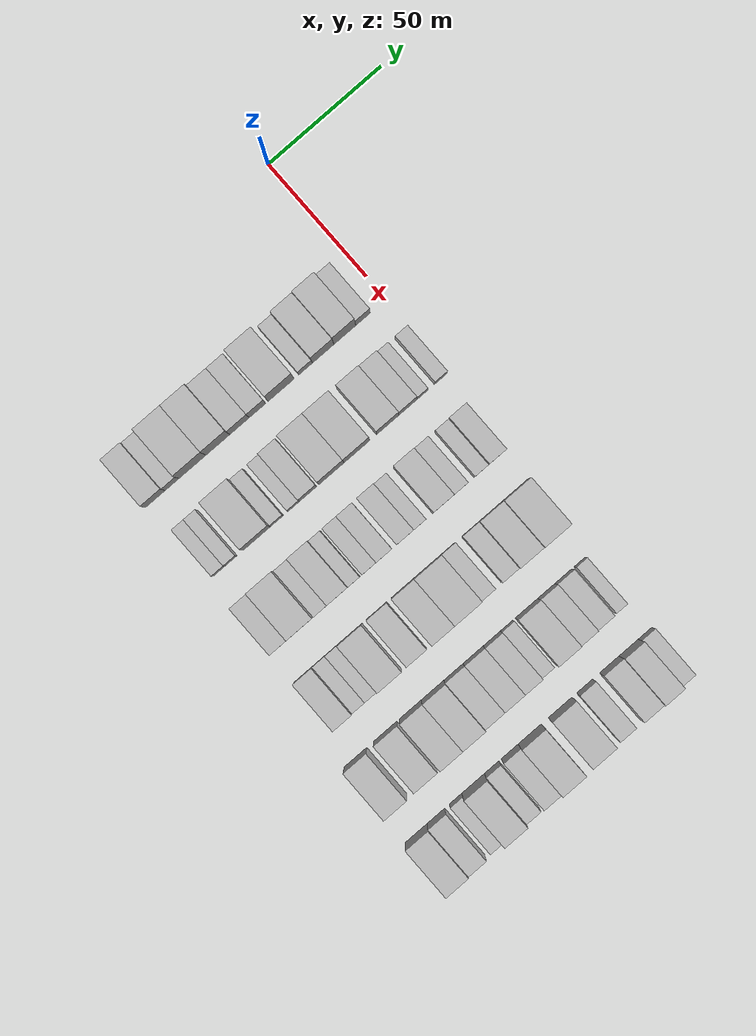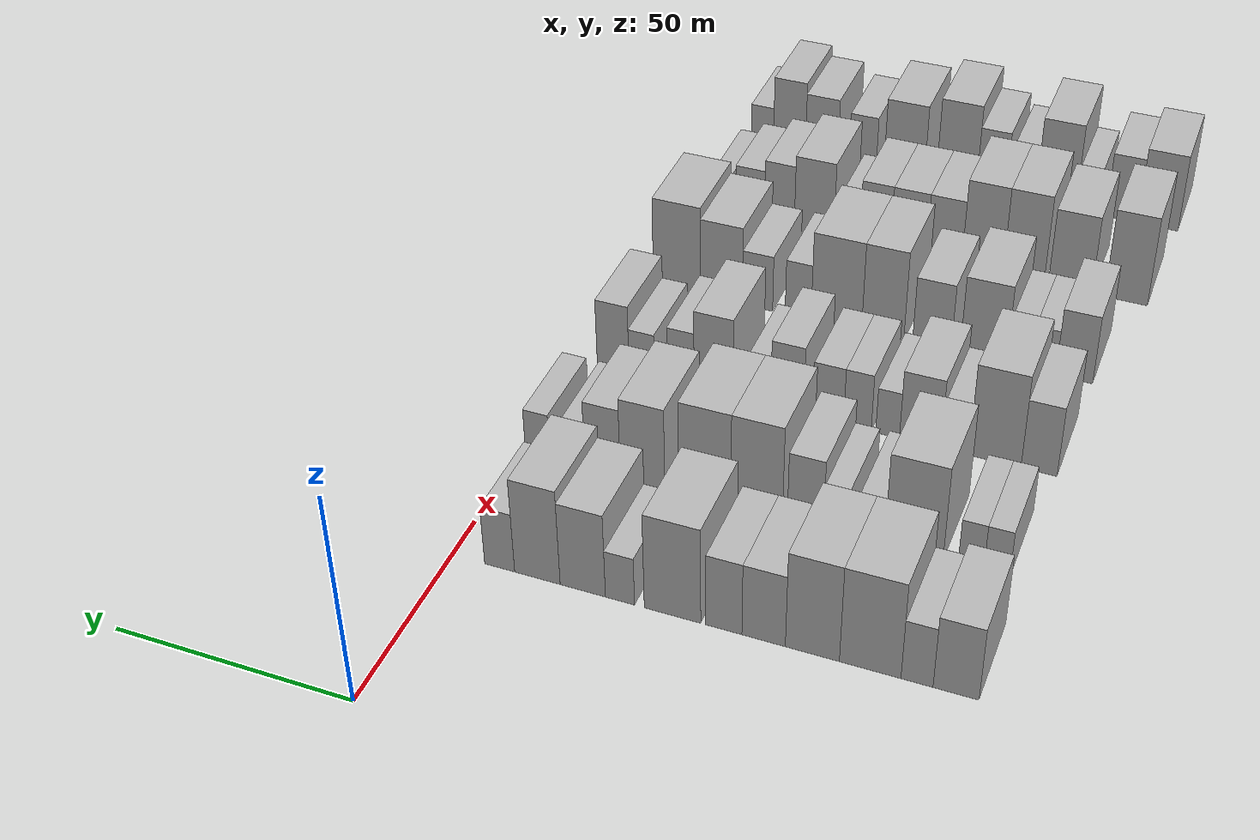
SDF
<sdf version="1.6">
 <world name="default">
  <model name="building_46">
   <static>1</static>
   <pose>50.0000 -101.3251 0 0.000000 0.000000 0.000000</pose>
   <link name="link">
    <pose>0 0 9.00 0 0 0</pose>
    <collision name="collision"><geometry><box><size>20.0000 8.5796 18.0000</size></box></geometry></collision>
    <visual name="visual">
     <cast_shadows>0</cast_shadows>
     <geometry><box><size>20.0000 8.5796 18.0000</size></box></geometry>
     <material>
      <script>
       <uri>model://HANNAS_wall/materials/scripts</uri>
       <uri>model://HANNAS_wall/materials/textures</uri>
       <name>vrc/HANNAS_wall</name>
      </script>
     </material>
    </visual>
   </link>
  </model>
  <model name="building_47">
   <static>1</static>
   <pose>50.0000 -94.0103 0 0.000000 0.000000 0.000000</pose>
   <link name="link">
    <pose>0 0 7.50 0 0 0</pose>
    <collision name="collision"><geometry><box><size>20.0000 6.0500 15.0000</size></box></geometry></collision>
    <visual name="visual">
     <cast_shadows>0</cast_shadows>
     <geometry><box><size>20.0000 6.0500 15.0000</size></box></geometry>
     <material>
      <script>
       <uri>model://HANNAS_wall/materials/scripts</uri>
       <uri>model://HANNAS_wall/materials/textures</uri>
       <name>vrc/HANNAS_wall</name>
      </script>
     </material>
    </visual>
   </link>
  </model>
  <model name="building_48">
   <static>1</static>
   <pose>50.0000 -85.0996 0 0.000000 0.000000 0.000000</pose>
   <link name="link">
    <pose>0 0 12.00 0 0 0</pose>
    <collision name="collision"><geometry><box><size>20.0000 11.7714 24.0000</size></box></geometry></collision>
    <visual name="visual">
     <cast_shadows>0</cast_shadows>
     <geometry><box><size>20.0000 11.7714 24.0000</size></box></geometry>
     <material>
      <script>
       <uri>model://HANNAS_wall/materials/scripts</uri>
       <uri>model://HANNAS_wall/materials/textures</uri>
       <name>vrc/HANNAS_wall</name>
      </script>
     </material>
    </visual>
   </link>
  </model>
  <model name="building_49">
   <static>1</static>
   <pose>50.0000 -73.9607 0 0.000000 0.000000 0.000000</pose>
   <link name="link">
    <pose>0 0 12.00 0 0 0</pose>
    <collision name="collision"><geometry><box><size>20.0000 10.5065 24.0000</size></box></geometry></collision>
    <visual name="visual">
     <cast_shadows>0</cast_shadows>
     <geometry><box><size>20.0000 10.5065 24.0000</size></box></geometry>
     <material>
      <script>
       <uri>model://HANNAS_wall/materials/scripts</uri>
       <uri>model://HANNAS_wall/materials/textures</uri>
       <name>vrc/HANNAS_wall</name>
      </script>
     </material>
    </visual>
   </link>
  </model>
  <model name="building_50">
   <static>1</static>
   <pose>50.0000 -64.4210 0 0.000000 0.000000 0.000000</pose>
   <link name="link">
    <pose>0 0 9.00 0 0 0</pose>
    <collision name="collision"><geometry><box><size>20.0000 8.5731 18.0000</size></box></geometry></collision>
    <visual name="visual">
     <cast_shadows>0</cast_shadows>
     <geometry><box><size>20.0000 8.5731 18.0000</size></box></geometry>
     <material>
      <script>
       <uri>model://HANNAS_wall/materials/scripts</uri>
       <uri>model://HANNAS_wall/materials/textures</uri>
       <name>vrc/HANNAS_wall</name>
      </script>
     </material>
    </visual>
   </link>
  </model>
  <model name="building_51">
   <static>1</static>
   <pose>50.0000 -56.5271 0 0.000000 0.000000 0.000000</pose>
   <link name="link">
    <pose>0 0 9.00 0 0 0</pose>
    <collision name="collision"><geometry><box><size>20.0000 7.2146 18.0000</size></box></geometry></collision>
    <visual name="visual">
     <cast_shadows>0</cast_shadows>
     <geometry><box><size>20.0000 7.2146 18.0000</size></box></geometry>
     <material>
      <script>
       <uri>model://HANNAS_wall/materials/scripts</uri>
       <uri>model://HANNAS_wall/materials/textures</uri>
       <name>vrc/HANNAS_wall</name>
      </script>
     </material>
    </visual>
   </link>
  </model>
  <model name="building_52">
   <static>1</static>
   <pose>50.0000 -46.1975 0 0.000000 0.000000 0.000000</pose>
   <link name="link">
    <pose>0 0 12.00 0 0 0</pose>
    <collision name="collision"><geometry><box><size>20.0000 11.4446 24.0000</size></box></geometry></collision>
    <visual name="visual">
     <cast_shadows>0</cast_shadows>
     <geometry><box><size>20.0000 11.4446 24.0000</size></box></geometry>
     <material>
      <script>
       <uri>model://HANNAS_wall/materials/scripts</uri>
       <uri>model://HANNAS_wall/materials/textures</uri>
       <name>vrc/HANNAS_wall</name>
      </script>
     </material>
    </visual>
   </link>
  </model>
  <model name="building_53">
   <static>1</static>
   <pose>50.0000 -35.4818 0 0.000000 0.000000 0.000000</pose>
   <link name="link">
    <pose>0 0 6.00 0 0 0</pose>
    <collision name="collision"><geometry><box><size>20.0000 5.9866 12.0000</size></box></geometry></collision>
    <visual name="visual">
     <cast_shadows>0</cast_shadows>
     <geometry><box><size>20.0000 5.9866 12.0000</size></box></geometry>
     <material>
      <script>
       <uri>model://HANNAS_wall/materials/scripts</uri>
       <uri>model://HANNAS_wall/materials/textures</uri>
       <name>vrc/HANNAS_wall</name>
      </script>
     </material>
    </visual>
   </link>
  </model>
  <model name="building_54">
   <static>1</static>
   <pose>50.0000 -27.7684 0 0.000000 0.000000 0.000000</pose>
   <link name="link">
    <pose>0 0 10.50 0 0 0</pose>
    <collision name="collision"><geometry><box><size>20.0000 9.4403 21.0000</size></box></geometry></collision>
    <visual name="visual">
     <cast_shadows>0</cast_shadows>
     <geometry><box><size>20.0000 9.4403 21.0000</size></box></geometry>
     <material>
      <script>
       <uri>model://HANNAS_wall/materials/scripts</uri>
       <uri>model://HANNAS_wall/materials/textures</uri>
       <name>vrc/HANNAS_wall</name>
      </script>
     </material>
    </visual>
   </link>
  </model>
  <model name="building_55">
   <static>1</static>
   <pose>50.0000 -18.2410 0 0.000000 0.000000 0.000000</pose>
   <link name="link">
    <pose>0 0 12.00 0 0 0</pose>
    <collision name="collision"><geometry><box><size>20.0000 9.6144 24.0000</size></box></geometry></collision>
    <visual name="visual">
     <cast_shadows>0</cast_shadows>
     <geometry><box><size>20.0000 9.6144 24.0000</size></box></geometry>
     <material>
      <script>
       <uri>model://HANNAS_wall/materials/scripts</uri>
       <uri>model://HANNAS_wall/materials/textures</uri>
       <name>vrc/HANNAS_wall</name>
      </script>
     </material>
    </visual>
   </link>
  </model>
  <model name="building_56">
   <static>1</static>
   <pose>50.0000 -10.2349 0 0.000000 0.000000 0.000000</pose>
   <link name="link">
    <pose>0 0 7.50 0 0 0</pose>
    <collision name="collision"><geometry><box><size>20.0000 6.3978 15.0000</size></box></geometry></collision>
    <visual name="visual">
     <cast_shadows>0</cast_shadows>
     <geometry><box><size>20.0000 6.3978 15.0000</size></box></geometry>
     <material>
      <script>
       <uri>model://HANNAS_wall/materials/scripts</uri>
       <uri>model://HANNAS_wall/materials/textures</uri>
       <name>vrc/HANNAS_wall</name>
      </script>
     </material>
    </visual>
   </link>
  </model>
  <model name="building_161">
   <static>1</static>
   <pose>82.0000 -100.8582 0 0.000000 0.000000 0.000000</pose>
   <link name="link">
    <pose>0 0 6.00 0 0 0</pose>
    <collision name="collision"><geometry><box><size>20.0000 5.1512 12.0000</size></box></geometry></collision>
    <visual name="visual">
     <cast_shadows>0</cast_shadows>
     <geometry><box><size>20.0000 5.1512 12.0000</size></box></geometry>
     <material>
      <script>
       <uri>model://HANNAS_wall/materials/scripts</uri>
       <uri>model://HANNAS_wall/materials/textures</uri>
       <name>vrc/HANNAS_wall</name>
      </script>
     </material>
    </visual>
   </link>
  </model>
  <model name="building_162">
   <static>1</static>
   <pose>82.0000 -95.7278 0 0.000000 0.000000 0.000000</pose>
   <link name="link">
    <pose>0 0 6.00 0 0 0</pose>
    <collision name="collision"><geometry><box><size>20.0000 5.1096 12.0000</size></box></geometry></collision>
    <visual name="visual">
     <cast_shadows>0</cast_shadows>
     <geometry><box><size>20.0000 5.1096 12.0000</size></box></geometry>
     <material>
      <script>
       <uri>model://HANNAS_wall/materials/scripts</uri>
       <uri>model://HANNAS_wall/materials/textures</uri>
       <name>vrc/HANNAS_wall</name>
      </script>
     </material>
    </visual>
   </link>
  </model>
  <model name="building_163">
   <static>1</static>
   <pose>82.0000 -84.2497 0 0.000000 0.000000 0.000000</pose>
   <link name="link">
    <pose>0 0 12.00 0 0 0</pose>
    <collision name="collision"><geometry><box><size>20.0000 11.8466 24.0000</size></box></geometry></collision>
    <visual name="visual">
     <cast_shadows>0</cast_shadows>
     <geometry><box><size>20.0000 11.8466 24.0000</size></box></geometry>
     <material>
      <script>
       <uri>model://HANNAS_wall/materials/scripts</uri>
       <uri>model://HANNAS_wall/materials/textures</uri>
       <name>vrc/HANNAS_wall</name>
      </script>
     </material>
    </visual>
   </link>
  </model>
  <model name="building_164">
   <static>1</static>
   <pose>82.0000 -75.5701 0 0.000000 0.000000 0.000000</pose>
   <link name="link">
    <pose>0 0 6.00 0 0 0</pose>
    <collision name="collision"><geometry><box><size>20.0000 5.5127 12.0000</size></box></geometry></collision>
    <visual name="visual">
     <cast_shadows>0</cast_shadows>
     <geometry><box><size>20.0000 5.5127 12.0000</size></box></geometry>
     <material>
      <script>
       <uri>model://HANNAS_wall/materials/scripts</uri>
       <uri>model://HANNAS_wall/materials/textures</uri>
       <name>vrc/HANNAS_wall</name>
      </script>
     </material>
    </visual>
   </link>
  </model>
  <model name="building_165">
   <static>1</static>
   <pose>82.0000 -68.2630 0 0.000000 0.000000 0.000000</pose>
   <link name="link">
    <pose>0 0 6.00 0 0 0</pose>
    <collision name="collision"><geometry><box><size>20.0000 5.1013 12.0000</size></box></geometry></collision>
    <visual name="visual">
     <cast_shadows>0</cast_shadows>
     <geometry><box><size>20.0000 5.1013 12.0000</size></box></geometry>
     <material>
      <script>
       <uri>model://HANNAS_wall/materials/scripts</uri>
       <uri>model://HANNAS_wall/materials/textures</uri>
       <name>vrc/HANNAS_wall</name>
      </script>
     </material>
    </visual>
   </link>
  </model>
  <model name="building_166">
   <static>1</static>
   <pose>82.0000 -61.9470 0 0.000000 0.000000 0.000000</pose>
   <link name="link">
    <pose>0 0 9.00 0 0 0</pose>
    <collision name="collision"><geometry><box><size>20.0000 7.5308 18.0000</size></box></geometry></collision>
    <visual name="visual">
     <cast_shadows>0</cast_shadows>
     <geometry><box><size>20.0000 7.5308 18.0000</size></box></geometry>
     <material>
      <script>
       <uri>model://HANNAS_wall/materials/scripts</uri>
       <uri>model://HANNAS_wall/materials/textures</uri>
       <name>vrc/HANNAS_wall</name>
      </script>
     </material>
    </visual>
   </link>
  </model>
  <model name="building_167">
   <static>1</static>
   <pose>82.0000 -51.7028 0 0.000000 0.000000 0.000000</pose>
   <link name="link">
    <pose>0 0 12.00 0 0 0</pose>
    <collision name="collision"><geometry><box><size>20.0000 10.9577 24.0000</size></box></geometry></collision>
    <visual name="visual">
     <cast_shadows>0</cast_shadows>
     <geometry><box><size>20.0000 10.9577 24.0000</size></box></geometry>
     <material>
      <script>
       <uri>model://HANNAS_wall/materials/scripts</uri>
       <uri>model://HANNAS_wall/materials/textures</uri>
       <name>vrc/HANNAS_wall</name>
      </script>
     </material>
    </visual>
   </link>
  </model>
  <model name="building_168">
   <static>1</static>
   <pose>82.0000 -40.6099 0 0.000000 0.000000 0.000000</pose>
   <link name="link">
    <pose>0 0 12.00 0 0 0</pose>
    <collision name="collision"><geometry><box><size>20.0000 11.2281 24.0000</size></box></geometry></collision>
    <visual name="visual">
     <cast_shadows>0</cast_shadows>
     <geometry><box><size>20.0000 11.2281 24.0000</size></box></geometry>
     <material>
      <script>
       <uri>model://HANNAS_wall/materials/scripts</uri>
       <uri>model://HANNAS_wall/materials/textures</uri>
       <name>vrc/HANNAS_wall</name>
      </script>
     </material>
    </visual>
   </link>
  </model>
  <model name="building_169">
   <static>1</static>
   <pose>82.0000 -27.1204 0 0.000000 0.000000 0.000000</pose>
   <link name="link">
    <pose>0 0 10.50 0 0 0</pose>
    <collision name="collision"><geometry><box><size>20.0000 9.7509 21.0000</size></box></geometry></collision>
    <visual name="visual">
     <cast_shadows>0</cast_shadows>
     <geometry><box><size>20.0000 9.7509 21.0000</size></box></geometry>
     <material>
      <script>
       <uri>model://HANNAS_wall/materials/scripts</uri>
       <uri>model://HANNAS_wall/materials/textures</uri>
       <name>vrc/HANNAS_wall</name>
      </script>
     </material>
    </visual>
   </link>
  </model>
  <model name="building_170">
   <static>1</static>
   <pose>82.0000 -18.3209 0 0.000000 0.000000 0.000000</pose>
   <link name="link">
    <pose>0 0 9.00 0 0 0</pose>
    <collision name="collision"><geometry><box><size>20.0000 7.8481 18.0000</size></box></geometry></collision>
    <visual name="visual">
     <cast_shadows>0</cast_shadows>
     <geometry><box><size>20.0000 7.8481 18.0000</size></box></geometry>
     <material>
      <script>
       <uri>model://HANNAS_wall/materials/scripts</uri>
       <uri>model://HANNAS_wall/materials/textures</uri>
       <name>vrc/HANNAS_wall</name>
      </script>
     </material>
    </visual>
   </link>
  </model>
  <model name="building_171">
   <static>1</static>
   <pose>82.0000 -11.9458 0 0.000000 0.000000 0.000000</pose>
   <link name="link">
    <pose>0 0 6.00 0 0 0</pose>
    <collision name="collision"><geometry><box><size>20.0000 4.9021 12.0000</size></box></geometry></collision>
    <visual name="visual">
     <cast_shadows>0</cast_shadows>
     <geometry><box><size>20.0000 4.9021 12.0000</size></box></geometry>
     <material>
      <script>
       <uri>model://HANNAS_wall/materials/scripts</uri>
       <uri>model://HANNAS_wall/materials/textures</uri>
       <name>vrc/HANNAS_wall</name>
      </script>
     </material>
    </visual>
   </link>
  </model>
  <model name="building_172">
   <static>1</static>
   <pose>82.0000 -3.7504 0 0.000000 0.000000 0.000000</pose>
   <link name="link">
    <pose>0 0 6.00 0 0 0</pose>
    <collision name="collision"><geometry><box><size>20.0000 5.4887 12.0000</size></box></geometry></collision>
    <visual name="visual">
     <cast_shadows>0</cast_shadows>
     <geometry><box><size>20.0000 5.4887 12.0000</size></box></geometry>
     <material>
      <script>
       <uri>model://HANNAS_wall/materials/scripts</uri>
       <uri>model://HANNAS_wall/materials/textures</uri>
       <name>vrc/HANNAS_wall</name>
      </script>
     </material>
    </visual>
   </link>
  </model>
  <model name="building_277">
   <static>1</static>
   <pose>114.0000 -101.7651 0 0.000000 0.000000 0.000000</pose>
   <link name="link">
    <pose>0 0 9.00 0 0 0</pose>
    <collision name="collision"><geometry><box><size>20.0000 7.5375 18.0000</size></box></geometry></collision>
    <visual name="visual">
     <cast_shadows>0</cast_shadows>
     <geometry><box><size>20.0000 7.5375 18.0000</size></box></geometry>
     <material>
      <script>
       <uri>model://HANNAS_wall/materials/scripts</uri>
       <uri>model://HANNAS_wall/materials/textures</uri>
       <name>vrc/HANNAS_wall</name>
      </script>
     </material>
    </visual>
   </link>
  </model>
  <model name="building_278">
   <static>1</static>
   <pose>114.0000 -92.4987 0 0.000000 0.000000 0.000000</pose>
   <link name="link">
    <pose>0 0 12.00 0 0 0</pose>
    <collision name="collision"><geometry><box><size>20.0000 10.9953 24.0000</size></box></geometry></collision>
    <visual name="visual">
     <cast_shadows>0</cast_shadows>
     <geometry><box><size>20.0000 10.9953 24.0000</size></box></geometry>
     <material>
      <script>
       <uri>model://HANNAS_wall/materials/scripts</uri>
       <uri>model://HANNAS_wall/materials/textures</uri>
       <name>vrc/HANNAS_wall</name>
      </script>
     </material>
    </visual>
   </link>
  </model>
  <model name="building_279">
   <static>1</static>
   <pose>114.0000 -84.0028 0 0.000000 0.000000 0.000000</pose>
   <link name="link">
    <pose>0 0 6.00 0 0 0</pose>
    <collision name="collision"><geometry><box><size>20.0000 5.9964 12.0000</size></box></geometry></collision>
    <visual name="visual">
     <cast_shadows>0</cast_shadows>
     <geometry><box><size>20.0000 5.9964 12.0000</size></box></geometry>
     <material>
      <script>
       <uri>model://HANNAS_wall/materials/scripts</uri>
       <uri>model://HANNAS_wall/materials/textures</uri>
       <name>vrc/HANNAS_wall</name>
      </script>
     </material>
    </visual>
   </link>
  </model>
  <model name="building_280">
   <static>1</static>
   <pose>114.0000 -76.5380 0 0.000000 0.000000 0.000000</pose>
   <link name="link">
    <pose>0 0 9.00 0 0 0</pose>
    <collision name="collision"><geometry><box><size>20.0000 8.9331 18.0000</size></box></geometry></collision>
    <visual name="visual">
     <cast_shadows>0</cast_shadows>
     <geometry><box><size>20.0000 8.9331 18.0000</size></box></geometry>
     <material>
      <script>
       <uri>model://HANNAS_wall/materials/scripts</uri>
       <uri>model://HANNAS_wall/materials/textures</uri>
       <name>vrc/HANNAS_wall</name>
      </script>
     </material>
    </visual>
   </link>
  </model>
  <model name="building_281">
   <static>1</static>
   <pose>114.0000 -69.4905 0 0.000000 0.000000 0.000000</pose>
   <link name="link">
    <pose>0 0 6.00 0 0 0</pose>
    <collision name="collision"><geometry><box><size>20.0000 5.1619 12.0000</size></box></geometry></collision>
    <visual name="visual">
     <cast_shadows>0</cast_shadows>
     <geometry><box><size>20.0000 5.1619 12.0000</size></box></geometry>
     <material>
      <script>
       <uri>model://HANNAS_wall/materials/scripts</uri>
       <uri>model://HANNAS_wall/materials/textures</uri>
       <name>vrc/HANNAS_wall</name>
      </script>
     </material>
    </visual>
   </link>
  </model>
  <model name="building_282">
   <static>1</static>
   <pose>114.0000 -62.8704 0 0.000000 0.000000 0.000000</pose>
   <link name="link">
    <pose>0 0 7.50 0 0 0</pose>
    <collision name="collision"><geometry><box><size>20.0000 6.0783 15.0000</size></box></geometry></collision>
    <visual name="visual">
     <cast_shadows>0</cast_shadows>
     <geometry><box><size>20.0000 6.0783 15.0000</size></box></geometry>
     <material>
      <script>
       <uri>model://HANNAS_wall/materials/scripts</uri>
       <uri>model://HANNAS_wall/materials/textures</uri>
       <name>vrc/HANNAS_wall</name>
      </script>
     </material>
    </visual>
   </link>
  </model>
  <model name="building_283">
   <static>1</static>
   <pose>114.0000 -56.3799 0 0.000000 0.000000 0.000000</pose>
   <link name="link">
    <pose>0 0 7.50 0 0 0</pose>
    <collision name="collision"><geometry><box><size>20.0000 6.9027 15.0000</size></box></geometry></collision>
    <visual name="visual">
     <cast_shadows>0</cast_shadows>
     <geometry><box><size>20.0000 6.9027 15.0000</size></box></geometry>
     <material>
      <script>
       <uri>model://HANNAS_wall/materials/scripts</uri>
       <uri>model://HANNAS_wall/materials/textures</uri>
       <name>vrc/HANNAS_wall</name>
      </script>
     </material>
    </visual>
   </link>
  </model>
  <model name="building_284">
   <static>1</static>
   <pose>114.0000 -47.2412 0 0.000000 0.000000 0.000000</pose>
   <link name="link">
    <pose>0 0 9.00 0 0 0</pose>
    <collision name="collision"><geometry><box><size>20.0000 7.3745 18.0000</size></box></geometry></collision>
    <visual name="visual">
     <cast_shadows>0</cast_shadows>
     <geometry><box><size>20.0000 7.3745 18.0000</size></box></geometry>
     <material>
      <script>
       <uri>model://HANNAS_wall/materials/scripts</uri>
       <uri>model://HANNAS_wall/materials/textures</uri>
       <name>vrc/HANNAS_wall</name>
      </script>
     </material>
    </visual>
   </link>
  </model>
  <model name="building_285">
   <static>1</static>
   <pose>114.0000 -40.8204 0 0.000000 0.000000 0.000000</pose>
   <link name="link">
    <pose>0 0 6.00 0 0 0</pose>
    <collision name="collision"><geometry><box><size>20.0000 5.4673 12.0000</size></box></geometry></collision>
    <visual name="visual">
     <cast_shadows>0</cast_shadows>
     <geometry><box><size>20.0000 5.4673 12.0000</size></box></geometry>
     <material>
      <script>
       <uri>model://HANNAS_wall/materials/scripts</uri>
       <uri>model://HANNAS_wall/materials/textures</uri>
       <name>vrc/HANNAS_wall</name>
      </script>
     </material>
    </visual>
   </link>
  </model>
  <model name="building_286">
   <static>1</static>
   <pose>114.0000 -30.5991 0 0.000000 0.000000 0.000000</pose>
   <link name="link">
    <pose>0 0 10.50 0 0 0</pose>
    <collision name="collision"><geometry><box><size>20.0000 8.9754 21.0000</size></box></geometry></collision>
    <visual name="visual">
     <cast_shadows>0</cast_shadows>
     <geometry><box><size>20.0000 8.9754 21.0000</size></box></geometry>
     <material>
      <script>
       <uri>model://HANNAS_wall/materials/scripts</uri>
       <uri>model://HANNAS_wall/materials/textures</uri>
       <name>vrc/HANNAS_wall</name>
      </script>
     </material>
    </visual>
   </link>
  </model>
  <model name="building_287">
   <static>1</static>
   <pose>114.0000 -23.0089 0 0.000000 0.000000 0.000000</pose>
   <link name="link">
    <pose>0 0 7.50 0 0 0</pose>
    <collision name="collision"><geometry><box><size>20.0000 6.2050 15.0000</size></box></geometry></collision>
    <visual name="visual">
     <cast_shadows>0</cast_shadows>
     <geometry><box><size>20.0000 6.2050 15.0000</size></box></geometry>
     <material>
      <script>
       <uri>model://HANNAS_wall/materials/scripts</uri>
       <uri>model://HANNAS_wall/materials/textures</uri>
       <name>vrc/HANNAS_wall</name>
      </script>
     </material>
    </visual>
   </link>
  </model>
  <model name="building_288">
   <static>1</static>
   <pose>114.0000 -13.9368 0 0.000000 0.000000 0.000000</pose>
   <link name="link">
    <pose>0 0 6.00 0 0 0</pose>
    <collision name="collision"><geometry><box><size>20.0000 5.9391 12.0000</size></box></geometry></collision>
    <visual name="visual">
     <cast_shadows>0</cast_shadows>
     <geometry><box><size>20.0000 5.9391 12.0000</size></box></geometry>
     <material>
      <script>
       <uri>model://HANNAS_wall/materials/scripts</uri>
       <uri>model://HANNAS_wall/materials/textures</uri>
       <name>vrc/HANNAS_wall</name>
      </script>
     </material>
    </visual>
   </link>
  </model>
  <model name="building_289">
   <static>1</static>
   <pose>114.0000 -7.2246 0 0.000000 0.000000 0.000000</pose>
   <link name="link">
    <pose>0 0 9.00 0 0 0</pose>
    <collision name="collision"><geometry><box><size>20.0000 7.4855 18.0000</size></box></geometry></collision>
    <visual name="visual">
     <cast_shadows>0</cast_shadows>
     <geometry><box><size>20.0000 7.4855 18.0000</size></box></geometry>
     <material>
      <script>
       <uri>model://HANNAS_wall/materials/scripts</uri>
       <uri>model://HANNAS_wall/materials/textures</uri>
       <name>vrc/HANNAS_wall</name>
      </script>
     </material>
    </visual>
   </link>
  </model>
  <model name="building_394">
   <static>1</static>
   <pose>146.0000 -102.0742 0 0.000000 0.000000 0.000000</pose>
   <link name="link">
    <pose>0 0 9.00 0 0 0</pose>
    <collision name="collision"><geometry><box><size>20.0000 8.1431 18.0000</size></box></geometry></collision>
    <visual name="visual">
     <cast_shadows>0</cast_shadows>
     <geometry><box><size>20.0000 8.1431 18.0000</size></box></geometry>
     <material>
      <script>
       <uri>model://HANNAS_wall/materials/scripts</uri>
       <uri>model://HANNAS_wall/materials/textures</uri>
       <name>vrc/HANNAS_wall</name>
      </script>
     </material>
    </visual>
   </link>
  </model>
  <model name="building_395">
   <static>1</static>
   <pose>146.0000 -95.2711 0 0.000000 0.000000 0.000000</pose>
   <link name="link">
    <pose>0 0 6.00 0 0 0</pose>
    <collision name="collision"><geometry><box><size>20.0000 5.4632 12.0000</size></box></geometry></collision>
    <visual name="visual">
     <cast_shadows>0</cast_shadows>
     <geometry><box><size>20.0000 5.4632 12.0000</size></box></geometry>
     <material>
      <script>
       <uri>model://HANNAS_wall/materials/scripts</uri>
       <uri>model://HANNAS_wall/materials/textures</uri>
       <name>vrc/HANNAS_wall</name>
      </script>
     </material>
    </visual>
   </link>
  </model>
  <model name="building_396">
   <static>1</static>
   <pose>146.0000 -89.8103 0 0.000000 0.000000 0.000000</pose>
   <link name="link">
    <pose>0 0 6.00 0 0 0</pose>
    <collision name="collision"><geometry><box><size>20.0000 5.4584 12.0000</size></box></geometry></collision>
    <visual name="visual">
     <cast_shadows>0</cast_shadows>
     <geometry><box><size>20.0000 5.4584 12.0000</size></box></geometry>
     <material>
      <script>
       <uri>model://HANNAS_wall/materials/scripts</uri>
       <uri>model://HANNAS_wall/materials/textures</uri>
       <name>vrc/HANNAS_wall</name>
      </script>
     </material>
    </visual>
   </link>
  </model>
  <model name="building_397">
   <static>1</static>
   <pose>146.0000 -81.8323 0 0.000000 0.000000 0.000000</pose>
   <link name="link">
    <pose>0 0 10.50 0 0 0</pose>
    <collision name="collision"><geometry><box><size>20.0000 10.4977 21.0000</size></box></geometry></collision>
    <visual name="visual">
     <cast_shadows>0</cast_shadows>
     <geometry><box><size>20.0000 10.4977 21.0000</size></box></geometry>
     <material>
      <script>
       <uri>model://HANNAS_wall/materials/scripts</uri>
       <uri>model://HANNAS_wall/materials/textures</uri>
       <name>vrc/HANNAS_wall</name>
      </script>
     </material>
    </visual>
   </link>
  </model>
  <model name="building_398">
   <static>1</static>
   <pose>146.0000 -70.1763 0 0.000000 0.000000 0.000000</pose>
   <link name="link">
    <pose>0 0 9.00 0 0 0</pose>
    <collision name="collision"><geometry><box><size>20.0000 8.8142 18.0000</size></box></geometry></collision>
    <visual name="visual">
     <cast_shadows>0</cast_shadows>
     <geometry><box><size>20.0000 8.8142 18.0000</size></box></geometry>
     <material>
      <script>
       <uri>model://HANNAS_wall/materials/scripts</uri>
       <uri>model://HANNAS_wall/materials/textures</uri>
       <name>vrc/HANNAS_wall</name>
      </script>
     </material>
    </visual>
   </link>
  </model>
  <model name="building_399">
   <static>1</static>
   <pose>146.0000 -58.8663 0 0.000000 0.000000 0.000000</pose>
   <link name="link">
    <pose>0 0 12.00 0 0 0</pose>
    <collision name="collision"><geometry><box><size>20.0000 9.8058 24.0000</size></box></geometry></collision>
    <visual name="visual">
     <cast_shadows>0</cast_shadows>
     <geometry><box><size>20.0000 9.8058 24.0000</size></box></geometry>
     <material>
      <script>
       <uri>model://HANNAS_wall/materials/scripts</uri>
       <uri>model://HANNAS_wall/materials/textures</uri>
       <name>vrc/HANNAS_wall</name>
      </script>
     </material>
    </visual>
   </link>
  </model>
  <model name="building_400">
   <static>1</static>
   <pose>146.0000 -48.0170 0 0.000000 0.000000 0.000000</pose>
   <link name="link">
    <pose>0 0 12.00 0 0 0</pose>
    <collision name="collision"><geometry><box><size>20.0000 11.8928 24.0000</size></box></geometry></collision>
    <visual name="visual">
     <cast_shadows>0</cast_shadows>
     <geometry><box><size>20.0000 11.8928 24.0000</size></box></geometry>
     <material>
      <script>
       <uri>model://HANNAS_wall/materials/scripts</uri>
       <uri>model://HANNAS_wall/materials/textures</uri>
       <name>vrc/HANNAS_wall</name>
      </script>
     </material>
    </visual>
   </link>
  </model>
  <model name="building_401">
   <static>1</static>
   <pose>146.0000 -38.9970 0 0.000000 0.000000 0.000000</pose>
   <link name="link">
    <pose>0 0 7.50 0 0 0</pose>
    <collision name="collision"><geometry><box><size>20.0000 6.1473 15.0000</size></box></geometry></collision>
    <visual name="visual">
     <cast_shadows>0</cast_shadows>
     <geometry><box><size>20.0000 6.1473 15.0000</size></box></geometry>
     <material>
      <script>
       <uri>model://HANNAS_wall/materials/scripts</uri>
       <uri>model://HANNAS_wall/materials/textures</uri>
       <name>vrc/HANNAS_wall</name>
      </script>
     </material>
    </visual>
   </link>
  </model>
  <model name="building_402">
   <static>1</static>
   <pose>146.0000 -29.2977 0 0.000000 0.000000 0.000000</pose>
   <link name="link">
    <pose>0 0 7.50 0 0 0</pose>
    <collision name="collision"><geometry><box><size>20.0000 7.2513 15.0000</size></box></geometry></collision>
    <visual name="visual">
     <cast_shadows>0</cast_shadows>
     <geometry><box><size>20.0000 7.2513 15.0000</size></box></geometry>
     <material>
      <script>
       <uri>model://HANNAS_wall/materials/scripts</uri>
       <uri>model://HANNAS_wall/materials/textures</uri>
       <name>vrc/HANNAS_wall</name>
      </script>
     </material>
    </visual>
   </link>
  </model>
  <model name="building_403">
   <static>1</static>
   <pose>146.0000 -20.5526 0 0.000000 0.000000 0.000000</pose>
   <link name="link">
    <pose>0 0 10.50 0 0 0</pose>
    <collision name="collision"><geometry><box><size>20.0000 10.2390 21.0000</size></box></geometry></collision>
    <visual name="visual">
     <cast_shadows>0</cast_shadows>
     <geometry><box><size>20.0000 10.2390 21.0000</size></box></geometry>
     <material>
      <script>
       <uri>model://HANNAS_wall/materials/scripts</uri>
       <uri>model://HANNAS_wall/materials/textures</uri>
       <name>vrc/HANNAS_wall</name>
      </script>
     </material>
    </visual>
   </link>
  </model>
  <model name="building_404">
   <static>1</static>
   <pose>146.0000 -9.6573 0 0.000000 0.000000 0.000000</pose>
   <link name="link">
    <pose>0 0 12.00 0 0 0</pose>
    <collision name="collision"><geometry><box><size>20.0000 11.5516 24.0000</size></box></geometry></collision>
    <visual name="visual">
     <cast_shadows>0</cast_shadows>
     <geometry><box><size>20.0000 11.5516 24.0000</size></box></geometry>
     <material>
      <script>
       <uri>model://HANNAS_wall/materials/scripts</uri>
       <uri>model://HANNAS_wall/materials/textures</uri>
       <name>vrc/HANNAS_wall</name>
      </script>
     </material>
    </visual>
   </link>
  </model>
  <model name="building_515">
   <static>1</static>
   <pose>178.0000 -107.1009 0 0.000000 0.000000 0.000000</pose>
   <link name="link">
    <pose>0 0 12.00 0 0 0</pose>
    <collision name="collision"><geometry><box><size>20.0000 9.8146 24.0000</size></box></geometry></collision>
    <visual name="visual">
     <cast_shadows>0</cast_shadows>
     <geometry><box><size>20.0000 9.8146 24.0000</size></box></geometry>
     <material>
      <script>
       <uri>model://HANNAS_wall/materials/scripts</uri>
       <uri>model://HANNAS_wall/materials/textures</uri>
       <name>vrc/HANNAS_wall</name>
      </script>
     </material>
    </visual>
   </link>
  </model>
  <model name="building_516">
   <static>1</static>
   <pose>178.0000 -94.1415 0 0.000000 0.000000 0.000000</pose>
   <link name="link">
    <pose>0 0 10.50 0 0 0</pose>
    <collision name="collision"><geometry><box><size>20.0000 10.1042 21.0000</size></box></geometry></collision>
    <visual name="visual">
     <cast_shadows>0</cast_shadows>
     <geometry><box><size>20.0000 10.1042 21.0000</size></box></geometry>
     <material>
      <script>
       <uri>model://HANNAS_wall/materials/scripts</uri>
       <uri>model://HANNAS_wall/materials/textures</uri>
       <name>vrc/HANNAS_wall</name>
      </script>
     </material>
    </visual>
   </link>
  </model>
  <model name="building_517">
   <static>1</static>
   <pose>178.0000 -83.2145 0 0.000000 0.000000 0.000000</pose>
   <link name="link">
    <pose>0 0 12.00 0 0 0</pose>
    <collision name="collision"><geometry><box><size>20.0000 9.7497 24.0000</size></box></geometry></collision>
    <visual name="visual">
     <cast_shadows>0</cast_shadows>
     <geometry><box><size>20.0000 9.7497 24.0000</size></box></geometry>
     <material>
      <script>
       <uri>model://HANNAS_wall/materials/scripts</uri>
       <uri>model://HANNAS_wall/materials/textures</uri>
       <name>vrc/HANNAS_wall</name>
      </script>
     </material>
    </visual>
   </link>
  </model>
  <model name="building_518">
   <static>1</static>
   <pose>178.0000 -73.4131 0 0.000000 0.000000 0.000000</pose>
   <link name="link">
    <pose>0 0 12.00 0 0 0</pose>
    <collision name="collision"><geometry><box><size>20.0000 9.8532 24.0000</size></box></geometry></collision>
    <visual name="visual">
     <cast_shadows>0</cast_shadows>
     <geometry><box><size>20.0000 9.8532 24.0000</size></box></geometry>
     <material>
      <script>
       <uri>model://HANNAS_wall/materials/scripts</uri>
       <uri>model://HANNAS_wall/materials/textures</uri>
       <name>vrc/HANNAS_wall</name>
      </script>
     </material>
    </visual>
   </link>
  </model>
  <model name="building_519">
   <static>1</static>
   <pose>178.0000 -64.2420 0 0.000000 0.000000 0.000000</pose>
   <link name="link">
    <pose>0 0 9.00 0 0 0</pose>
    <collision name="collision"><geometry><box><size>20.0000 8.4890 18.0000</size></box></geometry></collision>
    <visual name="visual">
     <cast_shadows>0</cast_shadows>
     <geometry><box><size>20.0000 8.4890 18.0000</size></box></geometry>
     <material>
      <script>
       <uri>model://HANNAS_wall/materials/scripts</uri>
       <uri>model://HANNAS_wall/materials/textures</uri>
       <name>vrc/HANNAS_wall</name>
      </script>
     </material>
    </visual>
   </link>
  </model>
  <model name="building_520">
   <static>1</static>
   <pose>178.0000 -55.6225 0 0.000000 0.000000 0.000000</pose>
   <link name="link">
    <pose>0 0 9.00 0 0 0</pose>
    <collision name="collision"><geometry><box><size>20.0000 8.7499 18.0000</size></box></geometry></collision>
    <visual name="visual">
     <cast_shadows>0</cast_shadows>
     <geometry><box><size>20.0000 8.7499 18.0000</size></box></geometry>
     <material>
      <script>
       <uri>model://HANNAS_wall/materials/scripts</uri>
       <uri>model://HANNAS_wall/materials/textures</uri>
       <name>vrc/HANNAS_wall</name>
      </script>
     </material>
    </visual>
   </link>
  </model>
  <model name="building_521">
   <static>1</static>
   <pose>178.0000 -47.4298 0 0.000000 0.000000 0.000000</pose>
   <link name="link">
    <pose>0 0 9.00 0 0 0</pose>
    <collision name="collision"><geometry><box><size>20.0000 7.6354 18.0000</size></box></geometry></collision>
    <visual name="visual">
     <cast_shadows>0</cast_shadows>
     <geometry><box><size>20.0000 7.6354 18.0000</size></box></geometry>
     <material>
      <script>
       <uri>model://HANNAS_wall/materials/scripts</uri>
       <uri>model://HANNAS_wall/materials/textures</uri>
       <name>vrc/HANNAS_wall</name>
      </script>
     </material>
    </visual>
   </link>
  </model>
  <model name="building_522">
   <static>1</static>
   <pose>178.0000 -40.9003 0 0.000000 0.000000 0.000000</pose>
   <link name="link">
    <pose>0 0 6.00 0 0 0</pose>
    <collision name="collision"><geometry><box><size>20.0000 5.4236 12.0000</size></box></geometry></collision>
    <visual name="visual">
     <cast_shadows>0</cast_shadows>
     <geometry><box><size>20.0000 5.4236 12.0000</size></box></geometry>
     <material>
      <script>
       <uri>model://HANNAS_wall/materials/scripts</uri>
       <uri>model://HANNAS_wall/materials/textures</uri>
       <name>vrc/HANNAS_wall</name>
      </script>
     </material>
    </visual>
   </link>
  </model>
  <model name="building_523">
   <static>1</static>
   <pose>178.0000 -32.2348 0 0.000000 0.000000 0.000000</pose>
   <link name="link">
    <pose>0 0 10.50 0 0 0</pose>
    <collision name="collision"><geometry><box><size>20.0000 9.9074 21.0000</size></box></geometry></collision>
    <visual name="visual">
     <cast_shadows>0</cast_shadows>
     <geometry><box><size>20.0000 9.9074 21.0000</size></box></geometry>
     <material>
      <script>
       <uri>model://HANNAS_wall/materials/scripts</uri>
       <uri>model://HANNAS_wall/materials/textures</uri>
       <name>vrc/HANNAS_wall</name>
      </script>
     </material>
    </visual>
   </link>
  </model>
  <model name="building_524">
   <static>1</static>
   <pose>178.0000 -23.5097 0 0.000000 0.000000 0.000000</pose>
   <link name="link">
    <pose>0 0 9.00 0 0 0</pose>
    <collision name="collision"><geometry><box><size>20.0000 7.5427 18.0000</size></box></geometry></collision>
    <visual name="visual">
     <cast_shadows>0</cast_shadows>
     <geometry><box><size>20.0000 7.5427 18.0000</size></box></geometry>
     <material>
      <script>
       <uri>model://HANNAS_wall/materials/scripts</uri>
       <uri>model://HANNAS_wall/materials/textures</uri>
       <name>vrc/HANNAS_wall</name>
      </script>
     </material>
    </visual>
   </link>
  </model>
  <model name="building_525">
   <static>1</static>
   <pose>178.0000 -16.0559 0 0.000000 0.000000 0.000000</pose>
   <link name="link">
    <pose>0 0 7.50 0 0 0</pose>
    <collision name="collision"><geometry><box><size>20.0000 7.3649 15.0000</size></box></geometry></collision>
    <visual name="visual">
     <cast_shadows>0</cast_shadows>
     <geometry><box><size>20.0000 7.3649 15.0000</size></box></geometry>
     <material>
      <script>
       <uri>model://HANNAS_wall/materials/scripts</uri>
       <uri>model://HANNAS_wall/materials/textures</uri>
       <name>vrc/HANNAS_wall</name>
      </script>
     </material>
    </visual>
   </link>
  </model>
  <model name="building_526">
   <static>1</static>
   <pose>178.0000 -8.9499 0 0.000000 0.000000 0.000000</pose>
   <link name="link">
    <pose>0 0 6.00 0 0 0</pose>
    <collision name="collision"><geometry><box><size>20.0000 4.8472 12.0000</size></box></geometry></collision>
    <visual name="visual">
     <cast_shadows>0</cast_shadows>
     <geometry><box><size>20.0000 4.8472 12.0000</size></box></geometry>
     <material>
      <script>
       <uri>model://HANNAS_wall/materials/scripts</uri>
       <uri>model://HANNAS_wall/materials/textures</uri>
       <name>vrc/HANNAS_wall</name>
      </script>
     </material>
    </visual>
   </link>
  </model>
  <model name="building_636">
   <static>1</static>
   <pose>210.0000 -108.4646 0 0.000000 0.000000 0.000000</pose>
   <link name="link">
    <pose>0 0 10.50 0 0 0</pose>
    <collision name="collision"><geometry><box><size>20.0000 9.7087 21.0000</size></box></geometry></collision>
    <visual name="visual">
     <cast_shadows>0</cast_shadows>
     <geometry><box><size>20.0000 9.7087 21.0000</size></box></geometry>
     <material>
      <script>
       <uri>model://HANNAS_wall/materials/scripts</uri>
       <uri>model://HANNAS_wall/materials/textures</uri>
       <name>vrc/HANNAS_wall</name>
      </script>
     </material>
    </visual>
   </link>
  </model>
  <model name="building_637">
   <static>1</static>
   <pose>210.0000 -99.7363 0 0.000000 0.000000 0.000000</pose>
   <link name="link">
    <pose>0 0 9.00 0 0 0</pose>
    <collision name="collision"><geometry><box><size>20.0000 7.7478 18.0000</size></box></geometry></collision>
    <visual name="visual">
     <cast_shadows>0</cast_shadows>
     <geometry><box><size>20.0000 7.7478 18.0000</size></box></geometry>
     <material>
      <script>
       <uri>model://HANNAS_wall/materials/scripts</uri>
       <uri>model://HANNAS_wall/materials/textures</uri>
       <name>vrc/HANNAS_wall</name>
      </script>
     </material>
    </visual>
   </link>
  </model>
  <model name="building_638">
   <static>1</static>
   <pose>210.0000 -91.1451 0 0.000000 0.000000 0.000000</pose>
   <link name="link">
    <pose>0 0 6.00 0 0 0</pose>
    <collision name="collision"><geometry><box><size>20.0000 5.4347 12.0000</size></box></geometry></collision>
    <visual name="visual">
     <cast_shadows>0</cast_shadows>
     <geometry><box><size>20.0000 5.4347 12.0000</size></box></geometry>
     <material>
      <script>
       <uri>model://HANNAS_wall/materials/scripts</uri>
       <uri>model://HANNAS_wall/materials/textures</uri>
       <name>vrc/HANNAS_wall</name>
      </script>
     </material>
    </visual>
   </link>
  </model>
  <model name="building_639">
   <static>1</static>
   <pose>210.0000 -83.4638 0 0.000000 0.000000 0.000000</pose>
   <link name="link">
    <pose>0 0 12.00 0 0 0</pose>
    <collision name="collision"><geometry><box><size>20.0000 9.9277 24.0000</size></box></geometry></collision>
    <visual name="visual">
     <cast_shadows>0</cast_shadows>
     <geometry><box><size>20.0000 9.9277 24.0000</size></box></geometry>
     <material>
      <script>
       <uri>model://HANNAS_wall/materials/scripts</uri>
       <uri>model://HANNAS_wall/materials/textures</uri>
       <name>vrc/HANNAS_wall</name>
      </script>
     </material>
    </visual>
   </link>
  </model>
  <model name="building_640">
   <static>1</static>
   <pose>210.0000 -75.3325 0 0.000000 0.000000 0.000000</pose>
   <link name="link">
    <pose>0 0 7.50 0 0 0</pose>
    <collision name="collision"><geometry><box><size>20.0000 6.3349 15.0000</size></box></geometry></collision>
    <visual name="visual">
     <cast_shadows>0</cast_shadows>
     <geometry><box><size>20.0000 6.3349 15.0000</size></box></geometry>
     <material>
      <script>
       <uri>model://HANNAS_wall/materials/scripts</uri>
       <uri>model://HANNAS_wall/materials/textures</uri>
       <name>vrc/HANNAS_wall</name>
      </script>
     </material>
    </visual>
   </link>
  </model>
  <model name="building_641">
   <static>1</static>
   <pose>210.0000 -67.4430 0 0.000000 0.000000 0.000000</pose>
   <link name="link">
    <pose>0 0 9.00 0 0 0</pose>
    <collision name="collision"><geometry><box><size>20.0000 7.4441 18.0000</size></box></geometry></collision>
    <visual name="visual">
     <cast_shadows>0</cast_shadows>
     <geometry><box><size>20.0000 7.4441 18.0000</size></box></geometry>
     <material>
      <script>
       <uri>model://HANNAS_wall/materials/scripts</uri>
       <uri>model://HANNAS_wall/materials/textures</uri>
       <name>vrc/HANNAS_wall</name>
      </script>
     </material>
    </visual>
   </link>
  </model>
  <model name="building_642">
   <static>1</static>
   <pose>210.0000 -58.6213 0 0.000000 0.000000 0.000000</pose>
   <link name="link">
    <pose>0 0 12.00 0 0 0</pose>
    <collision name="collision"><geometry><box><size>20.0000 10.1994 24.0000</size></box></geometry></collision>
    <visual name="visual">
     <cast_shadows>0</cast_shadows>
     <geometry><box><size>20.0000 10.1994 24.0000</size></box></geometry>
     <material>
      <script>
       <uri>model://HANNAS_wall/materials/scripts</uri>
       <uri>model://HANNAS_wall/materials/textures</uri>
       <name>vrc/HANNAS_wall</name>
      </script>
     </material>
    </visual>
   </link>
  </model>
  <model name="building_643">
   <static>1</static>
   <pose>210.0000 -45.2990 0 0.000000 0.000000 0.000000</pose>
   <link name="link">
    <pose>0 0 10.50 0 0 0</pose>
    <collision name="collision"><geometry><box><size>20.0000 10.4453 21.0000</size></box></geometry></collision>
    <visual name="visual">
     <cast_shadows>0</cast_shadows>
     <geometry><box><size>20.0000 10.4453 21.0000</size></box></geometry>
     <material>
      <script>
       <uri>model://HANNAS_wall/materials/scripts</uri>
       <uri>model://HANNAS_wall/materials/textures</uri>
       <name>vrc/HANNAS_wall</name>
      </script>
     </material>
    </visual>
   </link>
  </model>
  <model name="building_644">
   <static>1</static>
   <pose>210.0000 -34.5454 0 0.000000 0.000000 0.000000</pose>
   <link name="link">
    <pose>0 0 7.50 0 0 0</pose>
    <collision name="collision"><geometry><box><size>20.0000 7.0618 15.0000</size></box></geometry></collision>
    <visual name="visual">
     <cast_shadows>0</cast_shadows>
     <geometry><box><size>20.0000 7.0618 15.0000</size></box></geometry>
     <material>
      <script>
       <uri>model://HANNAS_wall/materials/scripts</uri>
       <uri>model://HANNAS_wall/materials/textures</uri>
       <name>vrc/HANNAS_wall</name>
      </script>
     </material>
    </visual>
   </link>
  </model>
  <model name="building_645">
   <static>1</static>
   <pose>210.0000 -23.7283 0 0.000000 0.000000 0.000000</pose>
   <link name="link">
    <pose>0 0 9.00 0 0 0</pose>
    <collision name="collision"><geometry><box><size>20.0000 8.5723 18.0000</size></box></geometry></collision>
    <visual name="visual">
     <cast_shadows>0</cast_shadows>
     <geometry><box><size>20.0000 8.5723 18.0000</size></box></geometry>
     <material>
      <script>
       <uri>model://HANNAS_wall/materials/scripts</uri>
       <uri>model://HANNAS_wall/materials/textures</uri>
       <name>vrc/HANNAS_wall</name>
      </script>
     </material>
    </visual>
   </link>
  </model>
  <model name="building_646">
   <static>1</static>
   <pose>210.0000 -15.1933 0 0.000000 0.000000 0.000000</pose>
   <link name="link">
    <pose>0 0 10.50 0 0 0</pose>
    <collision name="collision"><geometry><box><size>20.0000 8.4978 21.0000</size></box></geometry></collision>
    <visual name="visual">
     <cast_shadows>0</cast_shadows>
     <geometry><box><size>20.0000 8.4978 21.0000</size></box></geometry>
     <material>
      <script>
       <uri>model://HANNAS_wall/materials/scripts</uri>
       <uri>model://HANNAS_wall/materials/textures</uri>
       <name>vrc/HANNAS_wall</name>
      </script>
     </material>
    </visual>
   </link>
  </model>
  <model name="building_647">
   <static>1</static>
   <pose>210.0000 -7.9570 0 0.000000 0.000000 0.000000</pose>
   <link name="link">
    <pose>0 0 6.00 0 0 0</pose>
    <collision name="collision"><geometry><box><size>20.0000 5.9749 12.0000</size></box></geometry></collision>
    <visual name="visual">
     <cast_shadows>0</cast_shadows>
     <geometry><box><size>20.0000 5.9749 12.0000</size></box></geometry>
     <material>
      <script>
       <uri>model://HANNAS_wall/materials/scripts</uri>
       <uri>model://HANNAS_wall/materials/textures</uri>
       <name>vrc/HANNAS_wall</name>
      </script>
     </material>
    </visual>
   </link>
  </model>
 </world>
</sdf>
